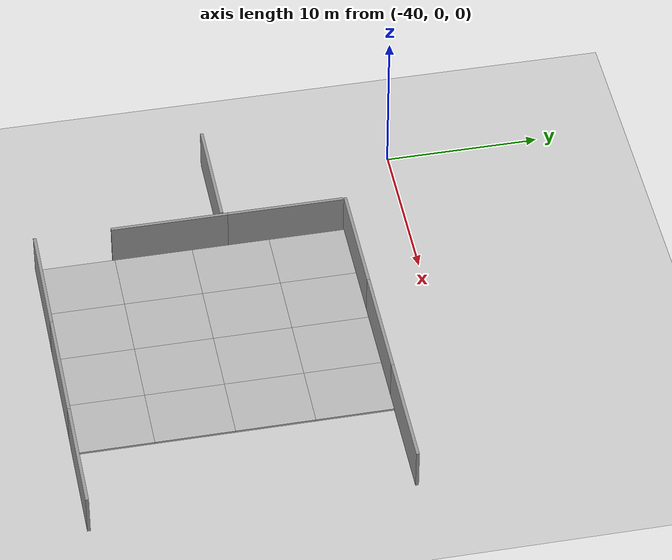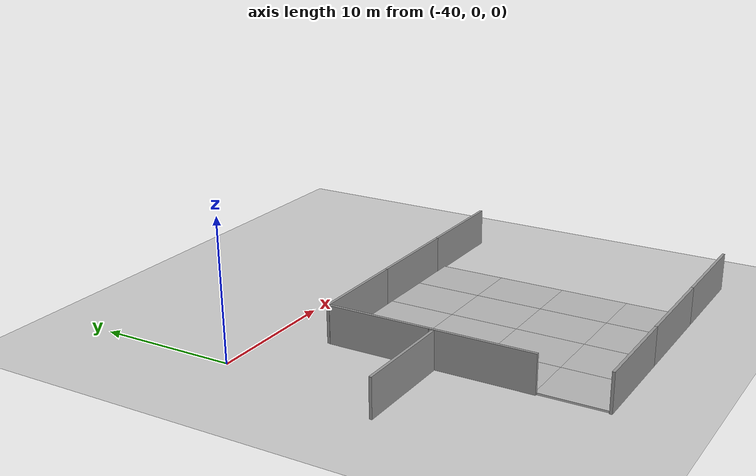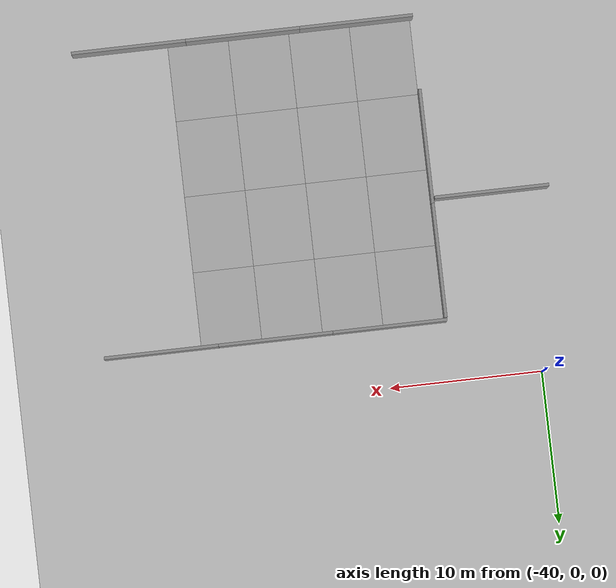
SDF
<sdf version="1.4">
 <world name="default">
  <light name="sun" type="directional">
   <pose>0 0 10 0 -0 0</pose>
   <diffuse>0.8 0.8 0.8 1</diffuse>
   <specular>0.2 0.2 0.2 1</specular>
   <attenuation>
    <range>1000</range>
    <constant>0.9</constant>
    <linear>0.01</linear>
    <quadratic>0.001</quadratic>
   </attenuation>
   <direction>0.5 0.1 -0.9</direction>
  </light>
  <model name="ground_plane">
   <static>1</static>
   <link name="link">
    <collision name="collision">
     <geometry><plane><normal>0 0 1</normal><size>100 100</size></plane></geometry>
     <surface><friction><ode><mu>100</mu><mu2>50</mu2></ode></friction></surface>
    </collision>
    <visual name="visual">
     <cast_shadows>0</cast_shadows>
     <geometry><plane><normal>0 0 1</normal><size>100 100</size></plane></geometry>
     <material>
      <script><uri>file://media/materials/scripts/gazebo.material</uri><name>Gazebo/Grey</name></script>
     </material>
    </visual>
    <velocity_decay><linear>0</linear><angular>0</angular></velocity_decay>
   </link>
  </model>
  <physics type="ode">
   <max_step_size>0.001</max_step_size>
   <real_time_factor>1</real_time_factor>
   <real_time_update_rate>1000</real_time_update_rate>
   <gravity>0 0 -9.8</gravity>
  </physics>
  <scene><ambient>0.4 0.4 0.4 1</ambient><background>0.7 0.7 0.7 1</background><shadows>1</shadows></scene>
  <spherical_coordinates>
   <surface_model>EARTH_WGS84</surface_model>
   <latitude_deg>0</latitude_deg>
   <longitude_deg>0</longitude_deg>
   <elevation>0</elevation>
   <heading_deg>0</heading_deg>
  </spherical_coordinates>
  <model name="grey_wall">
   <static>1</static>
   <link name="link">
    <pose>0 0 1.4 0 -0 0</pose>
    <collision name="collision"><geometry><box><size>7.5 0.2 2.8</size></box></geometry></collision>
    <visual name="visual">
     <cast_shadows>0</cast_shadows>
     <geometry><box><size>7.5 0.2 2.8</size></box></geometry>
     <material>
      <script>
       <uri>model://grey_wall/materials/scripts</uri>
       <uri>model://grey_wall/materials/textures</uri>
       <name>vrc/grey_wall</name>
      </script>
     </material>
    </visual>
    <velocity_decay><linear>0</linear><angular>0</angular></velocity_decay>
   </link>
   <pose>-15.4287 -4 0 0 -0 0</pose>
  </model>
  <model name="grey_wall_0">
   <static>1</static>
   <link name="link">
    <pose>0 0 1.4 0 -0 0</pose>
    <collision name="collision"><geometry><box><size>7.5 0.2 2.8</size></box></geometry></collision>
    <visual name="visual">
     <cast_shadows>0</cast_shadows>
     <geometry><box><size>7.5 0.2 2.8</size></box></geometry>
     <material>
      <script>
       <uri>model://grey_wall/materials/scripts</uri>
       <uri>model://grey_wall/materials/textures</uri>
       <name>vrc/grey_wall</name>
      </script>
     </material>
    </visual>
    <velocity_decay><linear>0</linear><angular>0</angular></velocity_decay>
   </link>
   <pose>-22.9275 -4 0 0 -0 0</pose>
  </model>
  <model name="grey_wall_1">
   <static>1</static>
   <link name="link">
    <pose>0 0 1.4 0 -0 0</pose>
    <collision name="collision"><geometry><box><size>7.5 0.2 2.8</size></box></geometry></collision>
    <visual name="visual">
     <cast_shadows>0</cast_shadows>
     <geometry><box><size>7.5 0.2 2.8</size></box></geometry>
     <material>
      <script>
       <uri>model://grey_wall/materials/scripts</uri>
       <uri>model://grey_wall/materials/textures</uri>
       <name>vrc/grey_wall</name>
      </script>
     </material>
    </visual>
    <velocity_decay><linear>0</linear><angular>0</angular></velocity_decay>
   </link>
   <pose>-30.3965 -4 0 0 -0 0</pose>
  </model>
  <model name="mud_box_6">
   <static>1</static>
   <link name="link">
    <collision name="collision"><geometry><box><size>8 10 0.2</size></box></geometry></collision>
    <visual name="visual_1">
     <pose>-2 2.5 0 0 -0 0</pose>
     <cast_shadows>0</cast_shadows>
     <geometry><box><size>4 5 0.2</size></box></geometry>
     <material>
      <script>
       <uri>model://mud_box/materials/scripts</uri>
       <uri>model://mud_box/materials/textures</uri>
       <name>vrc/mud</name>
      </script>
     </material>
    </visual>
    <visual name="visual_2">
     <pose>2 2.5 0 0 -0 0</pose>
     <cast_shadows>0</cast_shadows>
     <geometry><box><size>4 5 0.2</size></box></geometry>
     <material>
      <script>
       <uri>model://mud_box/materials/scripts</uri>
       <uri>model://mud_box/materials/textures</uri>
       <name>vrc/mud</name>
      </script>
     </material>
    </visual>
    <visual name="visual_3">
     <pose>2 -2.5 0 0 -0 0</pose>
     <cast_shadows>0</cast_shadows>
     <geometry><box><size>4 5 0.2</size></box></geometry>
     <material>
      <script>
       <uri>model://mud_box/materials/scripts</uri>
       <uri>model://mud_box/materials/textures</uri>
       <name>vrc/mud</name>
      </script>
     </material>
    </visual>
    <visual name="visual_4">
     <pose>-2 -2.5 0 0 -0 0</pose>
     <cast_shadows>0</cast_shadows>
     <geometry><box><size>4 5 0.2</size></box></geometry>
     <material>
      <script>
       <uri>model://mud_box/materials/scripts</uri>
       <uri>model://mud_box/materials/textures</uri>
       <name>vrc/mud</name>
      </script>
     </material>
    </visual>
    <velocity_decay><linear>0</linear><angular>0</angular></velocity_decay>
   </link>
   <pose>-30 -9 0 0 -0 0</pose>
  </model>
  <model name="mud_box_7">
   <static>1</static>
   <link name="link">
    <collision name="collision"><geometry><box><size>8 10 0.2</size></box></geometry></collision>
    <visual name="visual_1">
     <pose>-2 2.5 0 0 -0 0</pose>
     <cast_shadows>0</cast_shadows>
     <geometry><box><size>4 5 0.2</size></box></geometry>
     <material>
      <script>
       <uri>model://mud_box/materials/scripts</uri>
       <uri>model://mud_box/materials/textures</uri>
       <name>vrc/mud</name>
      </script>
     </material>
    </visual>
    <visual name="visual_2">
     <pose>2 2.5 0 0 -0 0</pose>
     <cast_shadows>0</cast_shadows>
     <geometry><box><size>4 5 0.2</size></box></geometry>
     <material>
      <script>
       <uri>model://mud_box/materials/scripts</uri>
       <uri>model://mud_box/materials/textures</uri>
       <name>vrc/mud</name>
      </script>
     </material>
    </visual>
    <visual name="visual_3">
     <pose>2 -2.5 0 0 -0 0</pose>
     <cast_shadows>0</cast_shadows>
     <geometry><box><size>4 5 0.2</size></box></geometry>
     <material>
      <script>
       <uri>model://mud_box/materials/scripts</uri>
       <uri>model://mud_box/materials/textures</uri>
       <name>vrc/mud</name>
      </script>
     </material>
    </visual>
    <visual name="visual_4">
     <pose>-2 -2.5 0 0 -0 0</pose>
     <cast_shadows>0</cast_shadows>
     <geometry><box><size>4 5 0.2</size></box></geometry>
     <material>
      <script>
       <uri>model://mud_box/materials/scripts</uri>
       <uri>model://mud_box/materials/textures</uri>
       <name>vrc/mud</name>
      </script>
     </material>
    </visual>
    <velocity_decay><linear>0</linear><angular>0</angular></velocity_decay>
   </link>
   <pose>-30 -19 0 0 -0 0</pose>
  </model>
  <model name="mud_box_8">
   <static>1</static>
   <link name="link">
    <collision name="collision"><geometry><box><size>8 10 0.2</size></box></geometry></collision>
    <visual name="visual_1">
     <pose>-2 2.5 0 0 -0 0</pose>
     <cast_shadows>0</cast_shadows>
     <geometry><box><size>4 5 0.2</size></box></geometry>
     <material>
      <script>
       <uri>model://mud_box/materials/scripts</uri>
       <uri>model://mud_box/materials/textures</uri>
       <name>vrc/mud</name>
      </script>
     </material>
    </visual>
    <visual name="visual_2">
     <pose>2 2.5 0 0 -0 0</pose>
     <cast_shadows>0</cast_shadows>
     <geometry><box><size>4 5 0.2</size></box></geometry>
     <material>
      <script>
       <uri>model://mud_box/materials/scripts</uri>
       <uri>model://mud_box/materials/textures</uri>
       <name>vrc/mud</name>
      </script>
     </material>
    </visual>
    <visual name="visual_3">
     <pose>2 -2.5 0 0 -0 0</pose>
     <cast_shadows>0</cast_shadows>
     <geometry><box><size>4 5 0.2</size></box></geometry>
     <material>
      <script>
       <uri>model://mud_box/materials/scripts</uri>
       <uri>model://mud_box/materials/textures</uri>
       <name>vrc/mud</name>
      </script>
     </material>
    </visual>
    <visual name="visual_4">
     <pose>-2 -2.5 0 0 -0 0</pose>
     <cast_shadows>0</cast_shadows>
     <geometry><box><size>4 5 0.2</size></box></geometry>
     <material>
      <script>
       <uri>model://mud_box/materials/scripts</uri>
       <uri>model://mud_box/materials/textures</uri>
       <name>vrc/mud</name>
      </script>
     </material>
    </visual>
    <velocity_decay><linear>0</linear><angular>0</angular></velocity_decay>
   </link>
   <pose>-22 -19 0 0 -0 0</pose>
  </model>
  <model name="mud_box_9">
   <static>1</static>
   <link name="link">
    <collision name="collision"><geometry><box><size>8 10 0.2</size></box></geometry></collision>
    <visual name="visual_1">
     <pose>-2 2.5 0 0 -0 0</pose>
     <cast_shadows>0</cast_shadows>
     <geometry><box><size>4 5 0.2</size></box></geometry>
     <material>
      <script>
       <uri>model://mud_box/materials/scripts</uri>
       <uri>model://mud_box/materials/textures</uri>
       <name>vrc/mud</name>
      </script>
     </material>
    </visual>
    <visual name="visual_2">
     <pose>2 2.5 0 0 -0 0</pose>
     <cast_shadows>0</cast_shadows>
     <geometry><box><size>4 5 0.2</size></box></geometry>
     <material>
      <script>
       <uri>model://mud_box/materials/scripts</uri>
       <uri>model://mud_box/materials/textures</uri>
       <name>vrc/mud</name>
      </script>
     </material>
    </visual>
    <visual name="visual_3">
     <pose>2 -2.5 0 0 -0 0</pose>
     <cast_shadows>0</cast_shadows>
     <geometry><box><size>4 5 0.2</size></box></geometry>
     <material>
      <script>
       <uri>model://mud_box/materials/scripts</uri>
       <uri>model://mud_box/materials/textures</uri>
       <name>vrc/mud</name>
      </script>
     </material>
    </visual>
    <visual name="visual_4">
     <pose>-2 -2.5 0 0 -0 0</pose>
     <cast_shadows>0</cast_shadows>
     <geometry><box><size>4 5 0.2</size></box></geometry>
     <material>
      <script>
       <uri>model://mud_box/materials/scripts</uri>
       <uri>model://mud_box/materials/textures</uri>
       <name>vrc/mud</name>
      </script>
     </material>
    </visual>
    <velocity_decay><linear>0</linear><angular>0</angular></velocity_decay>
   </link>
   <pose>-22 -9 0 0 -0 0</pose>
  </model>
  <model name="grey_wall_2">
   <static>1</static>
   <link name="link">
    <pose>0 0 1.4 0 -0 0</pose>
    <collision name="collision"><geometry><box><size>7.5 0.2 2.8</size></box></geometry></collision>
    <visual name="visual">
     <cast_shadows>0</cast_shadows>
     <geometry><box><size>7.5 0.2 2.8</size></box></geometry>
     <material>
      <script>
       <uri>model://grey_wall/materials/scripts</uri>
       <uri>model://grey_wall/materials/textures</uri>
       <name>vrc/grey_wall</name>
      </script>
     </material>
    </visual>
    <velocity_decay><linear>0</linear><angular>0</angular></velocity_decay>
   </link>
   <pose>-34.0892 -7.89484 0 0 -0 1.5708</pose>
  </model>
  <model name="grey_wall_3">
   <static>1</static>
   <link name="link">
    <pose>0 0 1.4 0 -0 0</pose>
    <collision name="collision"><geometry><box><size>7.5 0.2 2.8</size></box></geometry></collision>
    <visual name="visual">
     <cast_shadows>0</cast_shadows>
     <geometry><box><size>7.5 0.2 2.8</size></box></geometry>
     <material>
      <script>
       <uri>model://grey_wall/materials/scripts</uri>
       <uri>model://grey_wall/materials/textures</uri>
       <name>vrc/grey_wall</name>
      </script>
     </material>
    </visual>
    <velocity_decay><linear>0</linear><angular>0</angular></velocity_decay>
   </link>
   <pose>-34.0871 -15.3879 0 0 -0 1.5708</pose>
  </model>
  <model name="grey_wall_4">
   <static>1</static>
   <link name="link">
    <pose>0 0 1.4 0 -0 0</pose>
    <collision name="collision"><geometry><box><size>7.5 0.2 2.8</size></box></geometry></collision>
    <visual name="visual">
     <cast_shadows>0</cast_shadows>
     <geometry><box><size>7.5 0.2 2.8</size></box></geometry>
     <material>
      <script>
       <uri>model://grey_wall/materials/scripts</uri>
       <uri>model://grey_wall/materials/textures</uri>
       <name>vrc/grey_wall</name>
      </script>
     </material>
    </visual>
    <velocity_decay><linear>0</linear><angular>0</angular></velocity_decay>
   </link>
   <pose>-30.4235 -24 0 0 -0 0</pose>
  </model>
  <model name="grey_wall_5">
   <static>1</static>
   <link name="link">
    <pose>0 0 1.4 0 -0 0</pose>
    <collision name="collision"><geometry><box><size>7.5 0.2 2.8</size></box></geometry></collision>
    <visual name="visual">
     <cast_shadows>0</cast_shadows>
     <geometry><box><size>7.5 0.2 2.8</size></box></geometry>
     <material>
      <script>
       <uri>model://grey_wall/materials/scripts</uri>
       <uri>model://grey_wall/materials/textures</uri>
       <name>vrc/grey_wall</name>
      </script>
     </material>
    </visual>
    <velocity_decay><linear>0</linear><angular>0</angular></velocity_decay>
   </link>
   <pose>-23 -24 0 0 -0 0</pose>
  </model>
  <model name="grey_wall_6">
   <static>1</static>
   <link name="link">
    <pose>0 0 1.4 0 -0 0</pose>
    <collision name="collision"><geometry><box><size>7.5 0.2 2.8</size></box></geometry></collision>
    <visual name="visual">
     <cast_shadows>0</cast_shadows>
     <geometry><box><size>7.5 0.2 2.8</size></box></geometry>
     <material>
      <script>
       <uri>model://grey_wall/materials/scripts</uri>
       <uri>model://grey_wall/materials/textures</uri>
       <name>vrc/grey_wall</name>
      </script>
     </material>
    </visual>
    <velocity_decay><linear>0</linear><angular>0</angular></velocity_decay>
   </link>
   <pose>-15.5058 -24 0 0 -0 0</pose>
  </model>
  <model name="grey_wall_7">
   <static>1</static>
   <link name="link">
    <pose>0 0 1.4 0 -0 0</pose>
    <collision name="collision"><geometry><box><size>7.5 0.2 2.8</size></box></geometry></collision>
    <visual name="visual">
     <cast_shadows>0</cast_shadows>
     <geometry><box><size>7.5 0.2 2.8</size></box></geometry>
     <material>
      <script>
       <uri>model://grey_wall/materials/scripts</uri>
       <uri>model://grey_wall/materials/textures</uri>
       <name>vrc/grey_wall</name>
      </script>
     </material>
    </visual>
    <velocity_decay><linear>0</linear><angular>0</angular></velocity_decay>
   </link>
   <pose>-38 -12 0 0 -0 0</pose>
  </model>
 </world>
</sdf>
